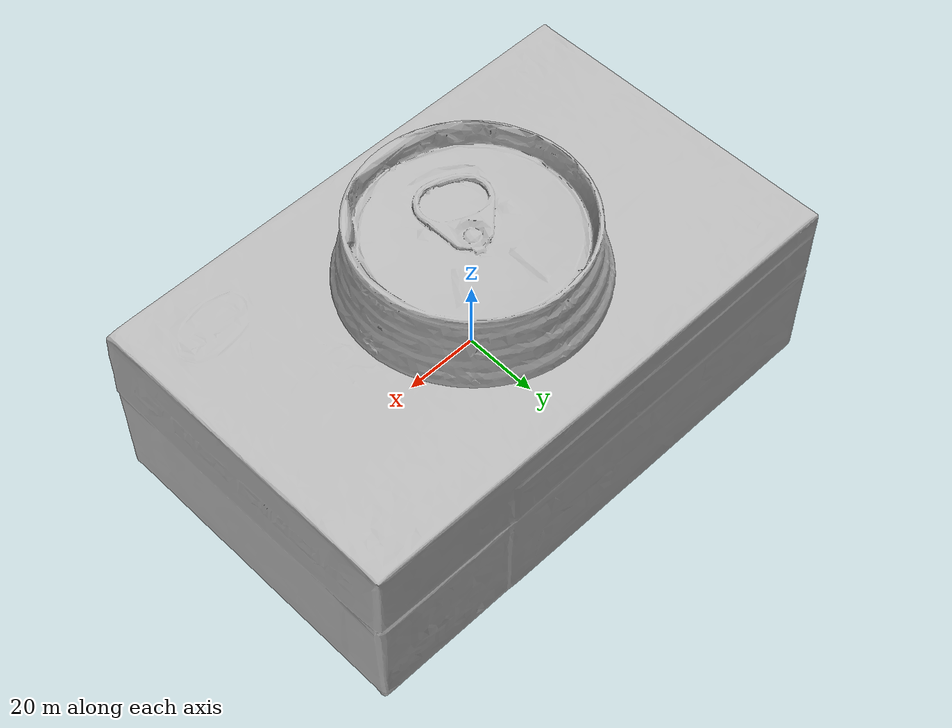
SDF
<sdf version="1.4">
 <world name="default">
  <light name="light1" type="point">
   <pose>0 0 1 0 0 0</pose>
   <diffuse>3 3 3 1</diffuse>
   <specular>3 3 3 1</specular>
  </light>
  <light name="light2" type="point">
   <pose>0 0.5 2 0 0 0</pose>
   <diffuse>1 1 1 1</diffuse>
   <specular>1 1 1 1</specular>
  </light>
  <light name="light3" type="point">
   <pose>0 0.5 2 0 0 0</pose>
   <diffuse>3 3 3 1</diffuse>
   <specular>3 3 3 1</specular>
  </light>
  <scene><ambient>0.7 0.7 0.7</ambient></scene>
  <model name="box1">
   <link name="link_box1">
    <collision name="default">
     <geometry>
      <mesh><uri>model://realsense_box/collision_meshes/collision.obj</uri><scale>1.0 1.0 1.0</scale></mesh>
     </geometry>
     <surface>
      <friction><ode><mu>0.5</mu><mu2>0.5</mu2></ode></friction>
      <contact><ode><max_vel>0</max_vel><min_depth>0.0001</min_depth><kp>1e8</kp></ode></contact>
     </surface>
    </collision>
    <visual name="default">
     <geometry>
      <mesh><uri>model://realsense_box/visual_meshes/visual.dae</uri><scale>1.0 1.0 1.0</scale></mesh>
     </geometry>
    </visual>
    <inertial>
     <mass>0.9783616662025452</mass>
     <pose>4.0744838770478964e-05 8.587493357481435e-05 -2.4153794583980925e-05 -0.00012602841694551038 -0.006358939977979225 0.005012324824875736</pose>
     <inertia>
      <ixx>0.0009306729</ixx>
      <iyy>0.0019425071</iyy>
      <izz>0.002403061</izz>
      <ixy>0</ixy>
      <ixz>0</ixz>
      <iyz>0</iyz>
     </inertia>
    </inertial>
   </link>
   <pose>0.09842362999916077 -0.3493047058582306 0.027316000312566757 -6.600120461241825e-08 -3.448488896717169e-08 3.1408061550035735</pose>
  </model>
  <model name="box2">
   <link name="link_box2">
    <collision name="default">
     <geometry>
      <mesh><uri>model://wooden_puzzle2/collision_meshes/collision.obj</uri><scale>1.0 1.0 1.0</scale></mesh>
     </geometry>
     <surface>
      <friction><ode><mu>0.5</mu><mu2>0.5</mu2></ode></friction>
      <contact><ode><max_vel>0</max_vel><min_depth>0.0001</min_depth><kp>1e8</kp></ode></contact>
     </surface>
    </collision>
    <visual name="default">
     <geometry>
      <mesh><uri>model://wooden_puzzle2/visual_meshes/visual.dae</uri><scale>1.0 1.0 1.0</scale></mesh>
     </geometry>
    </visual>
    <inertial>
     <mass>0.024048319086432457</mass>
     <pose>2.7402536943554878e-05 4.997663199901581e-05 6.587122334167361e-05 -0.19203048535200862 0.6112800928970119 -0.6338660341545117</pose>
     <inertia>
      <ixx>4.470326e-06</ixx>
      <iyy>4.593511e-06</iyy>
      <izz>4.528165e-06</izz>
      <ixy>0</ixy>
      <ixz>0</ixz>
      <iyz>0</iyz>
     </inertia>
    </inertial>
   </link>
   <pose>0.22620956599712372 -0.05502974987030029 0.01691773347556591 0.020847877477503895 0.0007217636308187116 0.23918963455505177</pose>
  </model>
  <model name="can1">
   <link name="link_can1">
    <collision name="default">
     <geometry>
      <mesh><uri>model://redbull/collision_meshes/collision.obj</uri><scale>1.0 1.0 1.0</scale></mesh>
     </geometry>
     <surface>
      <friction><ode><mu>0.5</mu><mu2>0.5</mu2></ode></friction>
      <contact><ode><max_vel>0</max_vel><min_depth>0.0001</min_depth><kp>1e8</kp></ode></contact>
     </surface>
    </collision>
    <visual name="default">
     <geometry>
      <mesh><uri>model://redbull/visual_meshes/visual.dae</uri><scale>1.0 1.0 1.0</scale></mesh>
     </geometry>
    </visual>
    <inertial>
     <mass>0.19214749336242676</mass>
     <pose>-2.212707477156073e-05 -0.00012659536150749773 -0.0006860988214612007 0.0011364686928787662 -0.01080099531045839 0.5859333437288349</pose>
     <inertia>
      <ixx>0.00018066002</ixx>
      <iyy>0.0001808125</iyy>
      <izz>0.0001072083</izz>
      <ixy>0</ixy>
      <ixz>0</ixz>
      <iyz>0</iyz>
     </inertia>
    </inertial>
   </link>
   <pose>-0.0019089076668024063 0.0444258414208889 0.04638563469052315 -0.010489462285755981 0.007261175836843458 0.04522677784197744</pose>
  </model>
  <model name="can2">
   <link name="link_can2">
    <collision name="default">
     <geometry>
      <mesh><uri>model://pepsi/collision_meshes/collision.obj</uri><scale>1.0 1.0 1.0</scale></mesh>
     </geometry>
     <surface>
      <friction><ode><mu>0.5</mu><mu2>0.5</mu2></ode></friction>
      <contact><ode><max_vel>0</max_vel><min_depth>0.0001</min_depth><kp>1e8</kp></ode></contact>
     </surface>
    </collision>
    <visual name="default">
     <geometry><mesh><uri>model://pepsi/visual_meshes/visual.dae</uri><scale>1.0 1.0 1.0</scale></mesh></geometry>
    </visual>
    <inertial>
     <mass>0.3079187572002411</mass>
     <pose>-7.5590331107378e-05 2.9931279641459696e-05 -0.0003384356386959553 -0.0010678548810066889 -0.0021735327588889423 0.5674125845328797</pose>
     <inertia>
      <ixx>0.0006134332</ixx>
      <iyy>0.0006129863</iyy>
      <izz>0.0001305606</izz>
      <ixy>0</ixy>
      <ixz>0</ixz>
      <iyz>0</iyz>
     </inertia>
    </inertial>
   </link>
   <pose>0.12232107669115067 -0.2342001497745514 0.07449635118246078 -1.8702951801939627e-05 2.171182808576925e-06 0.515853553119946</pose>
  </model>
  <physics type="ode">
   <max_contacts>50</max_contacts>
   <ode>
    <solver><type>quick</type><iters>75</iters></solver>
    <constraints>
     <contact_max_correcting_vel>0</contact_max_correcting_vel>
     <contact_surface_layer>0</contact_surface_layer>
    </constraints>
   </ode>
  </physics>
 </world>
</sdf>
